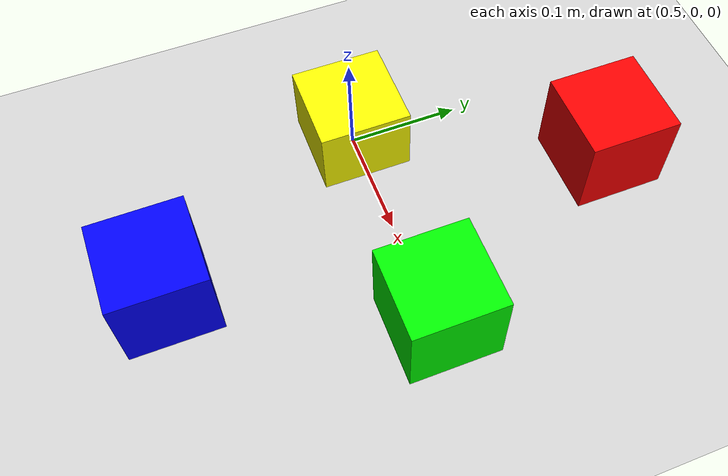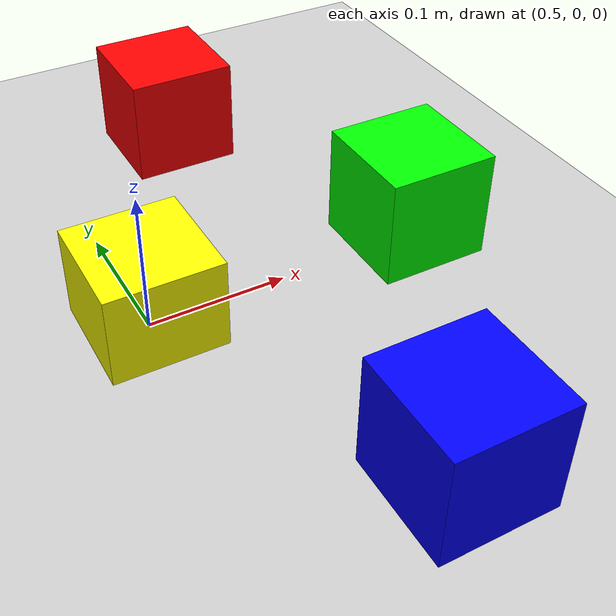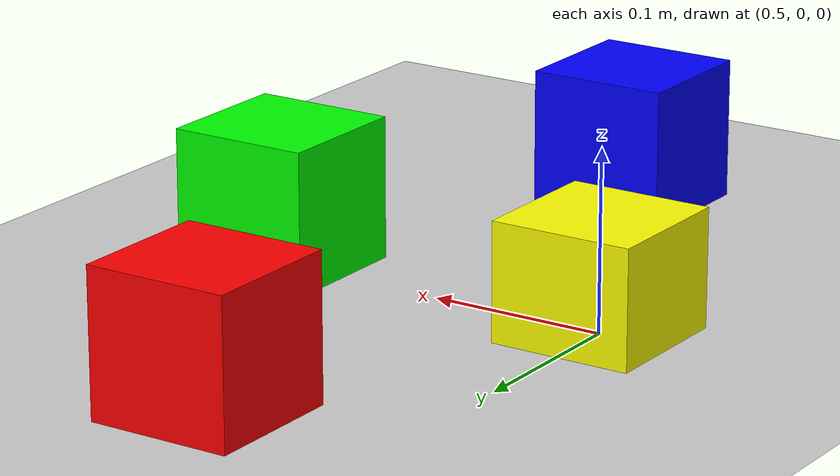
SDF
<?xml version="1.0" ?>
<sdf version="1.8">
  <world name="camera_world">
    <!-- Grasping practice world with colored cubes for vision-based manipulation -->
    <physics name="1ms" type="ignored">
      <max_step_size>0.001</max_step_size>
      <real_time_factor>1.0</real_time_factor>
    </physics>

    <plugin filename="gz-sim-physics-system" name="gz::sim::systems::Physics"/>
    <plugin filename="gz-sim-user-commands-system" name="gz::sim::systems::UserCommands"/>
    <plugin filename="gz-sim-scene-broadcaster-system" name="gz::sim::systems::SceneBroadcaster"/>
    <plugin filename="gz-sim-sensors-system" name="gz::sim::systems::Sensors">
      <render_engine>ogre2</render_engine>
    </plugin>

    <light type="directional" name="sun">
      <pose>0 0 10 0 0 0</pose>
      <diffuse>1 1 1 1</diffuse>
      <specular>0.5 0.5 0.5 1</specular>
    </light>

    <model name="ground_plane">
      <static>true</static>
      <link name="link">
        <collision name="collision">
          <geometry>
            <plane><normal>0 0 1</normal></plane>
          </geometry>
        </collision>
        <visual name="visual">
          <geometry>
            <plane><normal>0 0 1</normal></plane>
          </geometry>
        </visual>
      </link>
    </model>

    <!-- Red Cube -->
    <model name="red_cube">
      <pose>0.6 0.2 0.04 0 0 0</pose>
      <static>false</static>
      <link name="link">
        <inertial>
          <mass>0.1</mass>
          <inertia>
            <ixx>0.000041</ixx><iyy>0.000041</iyy><izz>0.000041</izz>
          </inertia>
        </inertial>
        <collision name="collision">
          <geometry>
            <box><size>0.08 0.08 0.08</size></box>
          </geometry>
        </collision>
        <visual name="visual">
          <geometry>
            <box><size>0.08 0.08 0.08</size></box>
          </geometry>
          <material>
            <ambient>1 0 0 1</ambient>
            <diffuse>1 0 0 1</diffuse>
            <specular>0.5 0.5 0.5 1</specular>
          </material>
        </visual>
      </link>
    </model>

    <!-- Yellow Cube -->
    <model name="yellow_cube">
      <pose>0.5 0.0 0.025 0 0 0</pose>
      <static>false</static>
      <link name="link">
        <inertial>
          <mass>0.1</mass>
          <inertia>
            <ixx>0.000041</ixx><iyy>0.000041</iyy><izz>0.000041</izz>
          </inertia>
        </inertial>
        <collision name="collision">
          <geometry>
            <box><size>0.08 0.08 0.08</size></box>
          </geometry>
        </collision>
        <visual name="visual">
          <geometry>
            <box><size>0.08 0.08 0.08</size></box>
          </geometry>
          <material>
            <ambient>1 1 0 1</ambient>
            <diffuse>1 1 0 1</diffuse>
            <specular>0.5 0.5 0.5 1</specular>
          </material>
        </visual>
      </link>
    </model>

    <!-- Blue Cube -->
    <model name="blue_cube">
      <pose>0.6 -0.2 0.04 0 0 0</pose>
      <static>false</static>
      <link name="link">
        <inertial>
          <mass>0.1</mass>
          <inertia>
            <ixx>0.000041</ixx><iyy>0.000041</iyy><izz>0.000041</izz>
          </inertia>
        </inertial>
        <collision name="collision">
          <geometry>
            <box><size>0.08 0.08 0.08</size></box>
          </geometry>
        </collision>
        <visual name="visual">
          <geometry>
            <box><size>0.08 0.08 0.08</size></box>
          </geometry>
          <material>
            <ambient>0 0 1 1</ambient>
            <diffuse>0 0 1 1</diffuse>
            <specular>0.5 0.5 0.5 1</specular>
          </material>
        </visual>
      </link>
    </model>

    <!-- Green Cube -->
    <model name="green_cube">
      <pose>0.7 0.0 0.04 0 0 0</pose>
      <static>false</static>
      <link name="link">
        <inertial>
          <mass>0.1</mass>
          <inertia>
            <ixx>0.000041</ixx><iyy>0.000041</iyy><izz>0.000041</izz>
          </inertia>
        </inertial>
        <collision name="collision">
          <geometry>
            <box><size>0.08 0.08 0.08</size></box>
          </geometry>
        </collision>
        <visual name="visual">
          <geometry>
            <box><size>0.08 0.08 0.08</size></box>
          </geometry>
          <material>
            <ambient>0 1 0 1</ambient>
            <diffuse>0 1 0 1</diffuse>
            <specular>0.5 0.5 0.5 1</specular>
          </material>
        </visual>
      </link>
    </model>

  </world>
</sdf>
